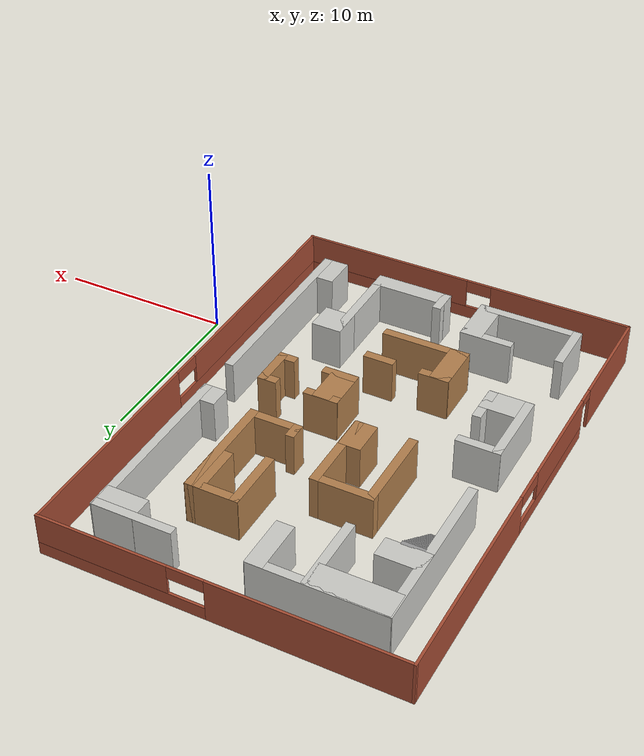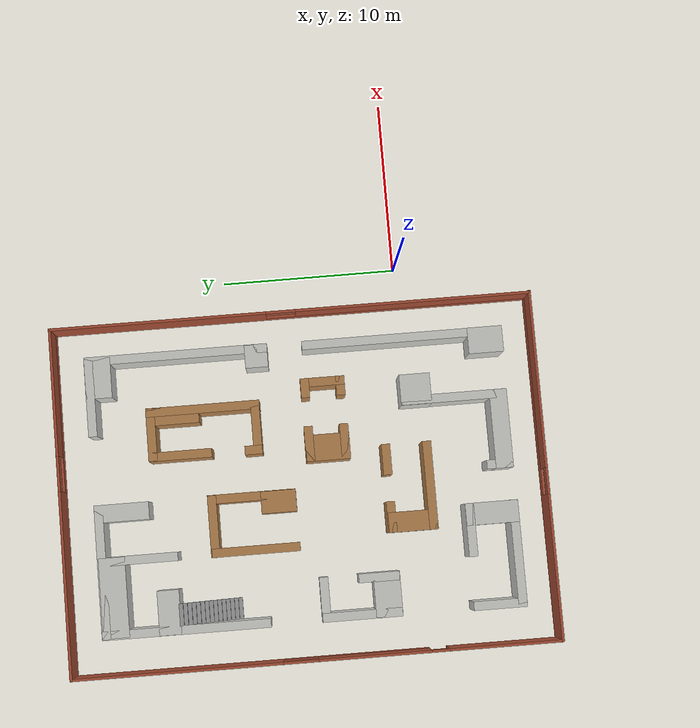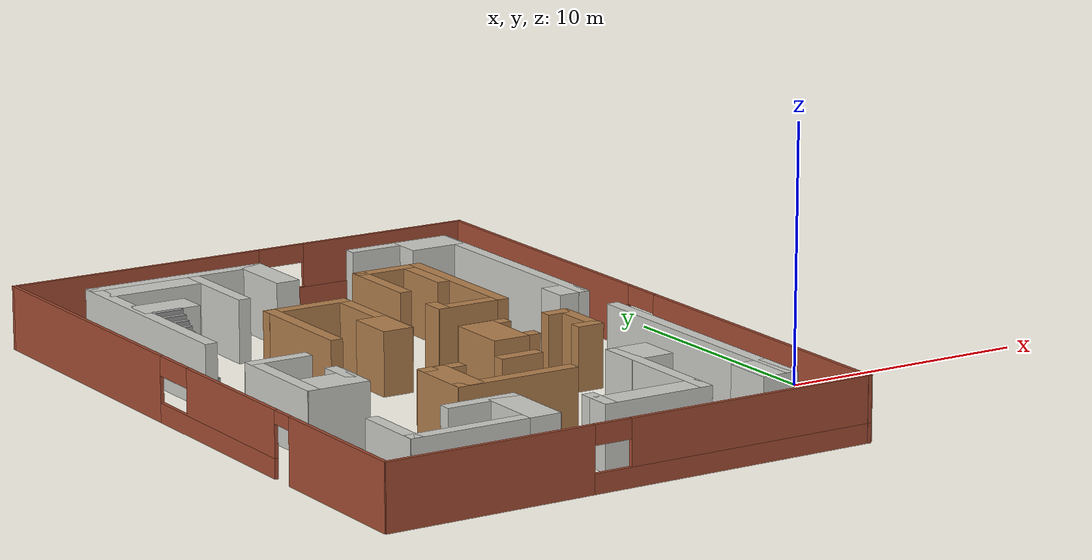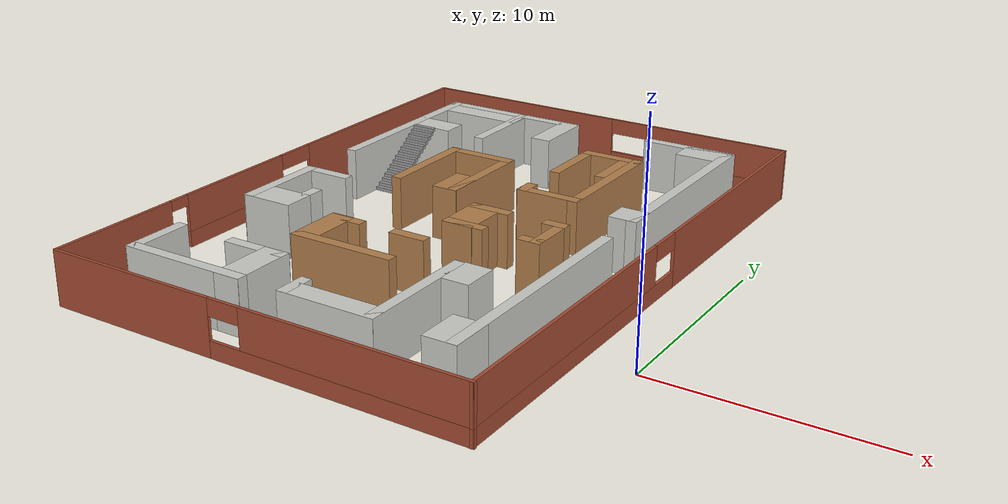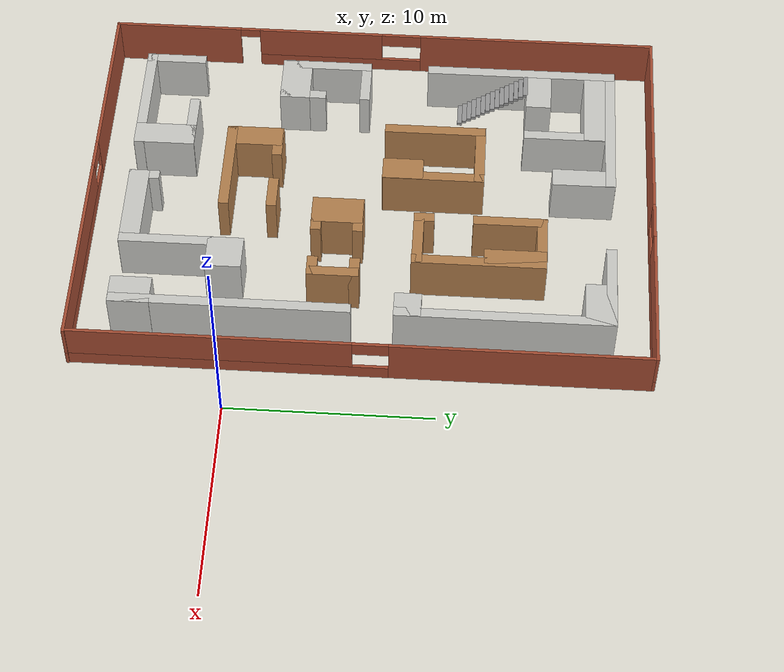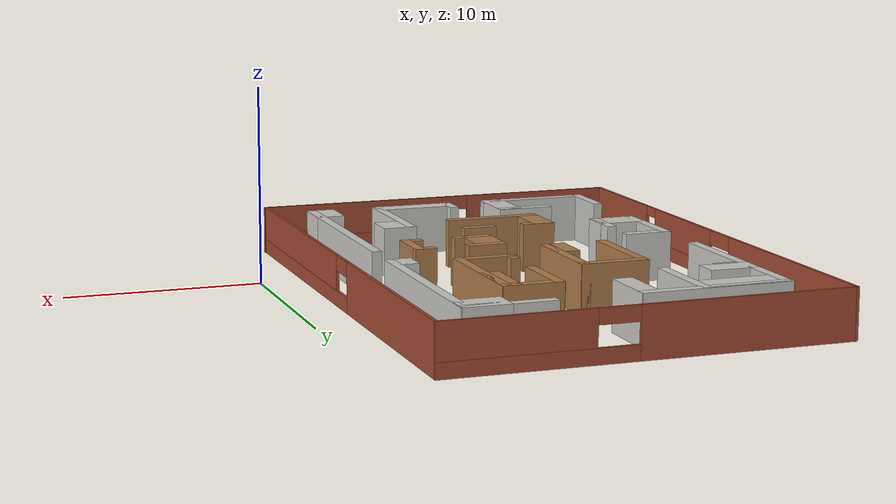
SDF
<?xml version='1.0'?>
<sdf version='1.7'>
  <model name='maze_world2'>
    <pose>-11.0864 6.28439 0 0 -0 0</pose>
    <link name='Stairs_3'>
      <visual name='Stairs_3_Visual_0'>
        <pose>-7.8722 4.14343 0.083333 0 0 -3.14159</pose>
        <geometry>
          <box>
            <size>1.25 0.233333 0.166667</size>
          </box>
        </geometry>
        <material>
          <script>
            <uri>file://media/materials/scripts/gazebo.material</uri>
            <name>Gazebo/Grey</name>
          </script>
          <ambient>1 1 1 1</ambient>
        </material>
        <meta>
          <layer>0</layer>
        </meta>
      </visual>
      <collision name='Stairs_3_Collision_0'>
        <geometry>
          <box>
            <size>1.25 0.233333 0.166667</size>
          </box>
        </geometry>
        <pose>-7.8722 4.14343 0.083333 0 0 -3.14159</pose>
      </collision>
      <visual name='Stairs_3_Visual_1'>
        <pose>-7.8722 4.37676 0.25 0 0 -3.14159</pose>
        <geometry>
          <box>
            <size>1.25 0.233333 0.166667</size>
          </box>
        </geometry>
        <material>
          <script>
            <uri>file://media/materials/scripts/gazebo.material</uri>
            <name>Gazebo/Grey</name>
          </script>
          <ambient>1 1 1 1</ambient>
        </material>
        <meta>
          <layer>0</layer>
        </meta>
      </visual>
      <collision name='Stairs_3_Collision_1'>
        <geometry>
          <box>
            <size>1.25 0.233333 0.166667</size>
          </box>
        </geometry>
        <pose>-7.8722 4.37676 0.25 0 0 -3.14159</pose>
      </collision>
      <visual name='Stairs_3_Visual_2'>
        <pose>-7.8722 4.6101 0.416667 0 0 -3.14159</pose>
        <geometry>
          <box>
            <size>1.25 0.233333 0.166667</size>
          </box>
        </geometry>
        <material>
          <script>
            <uri>file://media/materials/scripts/gazebo.material</uri>
            <name>Gazebo/Grey</name>
          </script>
          <ambient>1 1 1 1</ambient>
        </material>
        <meta>
          <layer>0</layer>
        </meta>
      </visual>
      <collision name='Stairs_3_Collision_2'>
        <geometry>
          <box>
            <size>1.25 0.233333 0.166667</size>
          </box>
        </geometry>
        <pose>-7.8722 4.6101 0.416667 0 0 -3.14159</pose>
      </collision>
      <visual name='Stairs_3_Visual_3'>
        <pose>-7.8722 4.84343 0.583333 0 0 -3.14159</pose>
        <geometry>
          <box>
            <size>1.25 0.233333 0.166667</size>
          </box>
        </geometry>
        <material>
          <script>
            <uri>file://media/materials/scripts/gazebo.material</uri>
            <name>Gazebo/Grey</name>
          </script>
          <ambient>1 1 1 1</ambient>
        </material>
        <meta>
          <layer>0</layer>
        </meta>
      </visual>
      <collision name='Stairs_3_Collision_3'>
        <geometry>
          <box>
            <size>1.25 0.233333 0.166667</size>
          </box>
        </geometry>
        <pose>-7.8722 4.84343 0.583333 0 0 -3.14159</pose>
      </collision>
      <visual name='Stairs_3_Visual_4'>
        <pose>-7.8722 5.07676 0.75 0 0 -3.14159</pose>
        <geometry>
          <box>
            <size>1.25 0.233333 0.166667</size>
          </box>
        </geometry>
        <material>
          <script>
            <uri>file://media/materials/scripts/gazebo.material</uri>
            <name>Gazebo/Grey</name>
          </script>
          <ambient>1 1 1 1</ambient>
        </material>
        <meta>
          <layer>0</layer>
        </meta>
      </visual>
      <collision name='Stairs_3_Collision_4'>
        <geometry>
          <box>
            <size>1.25 0.233333 0.166667</size>
          </box>
        </geometry>
        <pose>-7.8722 5.07676 0.75 0 0 -3.14159</pose>
      </collision>
      <visual name='Stairs_3_Visual_5'>
        <pose>-7.8722 5.3101 0.916667 0 0 -3.14159</pose>
        <geometry>
          <box>
            <size>1.25 0.233333 0.166667</size>
          </box>
        </geometry>
        <material>
          <script>
            <uri>file://media/materials/scripts/gazebo.material</uri>
            <name>Gazebo/Grey</name>
          </script>
          <ambient>1 1 1 1</ambient>
        </material>
        <meta>
          <layer>0</layer>
        </meta>
      </visual>
      <collision name='Stairs_3_Collision_5'>
        <geometry>
          <box>
            <size>1.25 0.233333 0.166667</size>
          </box>
        </geometry>
        <pose>-7.8722 5.3101 0.916667 0 0 -3.14159</pose>
      </collision>
      <visual name='Stairs_3_Visual_6'>
        <pose>-7.8722 5.54343 1.08333 0 0 -3.14159</pose>
        <geometry>
          <box>
            <size>1.25 0.233333 0.166667</size>
          </box>
        </geometry>
        <material>
          <script>
            <uri>file://media/materials/scripts/gazebo.material</uri>
            <name>Gazebo/Grey</name>
          </script>
          <ambient>1 1 1 1</ambient>
        </material>
        <meta>
          <layer>0</layer>
        </meta>
      </visual>
      <collision name='Stairs_3_Collision_6'>
        <geometry>
          <box>
            <size>1.25 0.233333 0.166667</size>
          </box>
        </geometry>
        <pose>-7.8722 5.54343 1.08333 0 0 -3.14159</pose>
      </collision>
      <visual name='Stairs_3_Visual_7'>
        <pose>-7.8722 5.77677 1.25 0 0 -3.14159</pose>
        <geometry>
          <box>
            <size>1.25 0.233333 0.166667</size>
          </box>
        </geometry>
        <material>
          <script>
            <uri>file://media/materials/scripts/gazebo.material</uri>
            <name>Gazebo/Grey</name>
          </script>
          <ambient>1 1 1 1</ambient>
        </material>
        <meta>
          <layer>0</layer>
        </meta>
      </visual>
      <collision name='Stairs_3_Collision_7'>
        <geometry>
          <box>
            <size>1.25 0.233333 0.166667</size>
          </box>
        </geometry>
        <pose>-7.8722 5.77677 1.25 0 0 -3.14159</pose>
      </collision>
      <visual name='Stairs_3_Visual_8'>
        <pose>-7.8722 6.0101 1.41667 0 0 -3.14159</pose>
        <geometry>
          <box>
            <size>1.25 0.233333 0.166667</size>
          </box>
        </geometry>
        <material>
          <script>
            <uri>file://media/materials/scripts/gazebo.material</uri>
            <name>Gazebo/Grey</name>
          </script>
          <ambient>1 1 1 1</ambient>
        </material>
        <meta>
          <layer>0</layer>
        </meta>
      </visual>
      <collision name='Stairs_3_Collision_8'>
        <geometry>
          <box>
            <size>1.25 0.233333 0.166667</size>
          </box>
        </geometry>
        <pose>-7.8722 6.0101 1.41667 0 0 -3.14159</pose>
      </collision>
      <visual name='Stairs_3_Visual_9'>
        <pose>-7.8722 6.24343 1.58333 0 0 -3.14159</pose>
        <geometry>
          <box>
            <size>1.25 0.233333 0.166667</size>
          </box>
        </geometry>
        <material>
          <script>
            <uri>file://media/materials/scripts/gazebo.material</uri>
            <name>Gazebo/Grey</name>
          </script>
          <ambient>1 1 1 1</ambient>
        </material>
        <meta>
          <layer>0</layer>
        </meta>
      </visual>
      <collision name='Stairs_3_Collision_9'>
        <geometry>
          <box>
            <size>1.25 0.233333 0.166667</size>
          </box>
        </geometry>
        <pose>-7.8722 6.24343 1.58333 0 0 -3.14159</pose>
      </collision>
      <visual name='Stairs_3_Visual_10'>
        <pose>-7.8722 6.47677 1.75 0 0 -3.14159</pose>
        <geometry>
          <box>
            <size>1.25 0.233333 0.166667</size>
          </box>
        </geometry>
        <material>
          <script>
            <uri>file://media/materials/scripts/gazebo.material</uri>
            <name>Gazebo/Grey</name>
          </script>
          <ambient>1 1 1 1</ambient>
        </material>
        <meta>
          <layer>0</layer>
        </meta>
      </visual>
      <collision name='Stairs_3_Collision_10'>
        <geometry>
          <box>
            <size>1.25 0.233333 0.166667</size>
          </box>
        </geometry>
        <pose>-7.8722 6.47677 1.75 0 0 -3.14159</pose>
      </collision>
      <visual name='Stairs_3_Visual_11'>
        <pose>-7.8722 6.7101 1.91667 0 0 -3.14159</pose>
        <geometry>
          <box>
            <size>1.25 0.233333 0.166667</size>
          </box>
        </geometry>
        <material>
          <script>
            <uri>file://media/materials/scripts/gazebo.material</uri>
            <name>Gazebo/Grey</name>
          </script>
          <ambient>1 1 1 1</ambient>
        </material>
        <meta>
          <layer>0</layer>
        </meta>
      </visual>
      <collision name='Stairs_3_Collision_11'>
        <geometry>
          <box>
            <size>1.25 0.233333 0.166667</size>
          </box>
        </geometry>
        <pose>-7.8722 6.7101 1.91667 0 0 -3.14159</pose>
      </collision>
      <visual name='Stairs_3_Visual_12'>
        <pose>-7.8722 6.94343 2.08333 0 0 -3.14159</pose>
        <geometry>
          <box>
            <size>1.25 0.233333 0.166667</size>
          </box>
        </geometry>
        <material>
          <script>
            <uri>file://media/materials/scripts/gazebo.material</uri>
            <name>Gazebo/Grey</name>
          </script>
          <ambient>1 1 1 1</ambient>
        </material>
        <meta>
          <layer>0</layer>
        </meta>
      </visual>
      <collision name='Stairs_3_Collision_12'>
        <geometry>
          <box>
            <size>1.25 0.233333 0.166667</size>
          </box>
        </geometry>
        <pose>-7.8722 6.94343 2.08333 0 0 -3.14159</pose>
      </collision>
      <visual name='Stairs_3_Visual_13'>
        <pose>-7.8722 7.17676 2.25 0 0 -3.14159</pose>
        <geometry>
          <box>
            <size>1.25 0.233333 0.166667</size>
          </box>
        </geometry>
        <material>
          <script>
            <uri>file://media/materials/scripts/gazebo.material</uri>
            <name>Gazebo/Grey</name>
          </script>
          <ambient>1 1 1 1</ambient>
        </material>
        <meta>
          <layer>0</layer>
        </meta>
      </visual>
      <collision name='Stairs_3_Collision_13'>
        <geometry>
          <box>
            <size>1.25 0.233333 0.166667</size>
          </box>
        </geometry>
        <pose>-7.8722 7.17676 2.25 0 0 -3.14159</pose>
      </collision>
      <visual name='Stairs_3_Visual_14'>
        <pose>-7.8722 7.4101 2.41667 0 0 -3.14159</pose>
        <geometry>
          <box>
            <size>1.25 0.233333 0.166667</size>
          </box>
        </geometry>
        <material>
          <script>
            <uri>file://media/materials/scripts/gazebo.material</uri>
            <name>Gazebo/Grey</name>
          </script>
          <ambient>1 1 1 1</ambient>
        </material>
        <meta>
          <layer>0</layer>
        </meta>
      </visual>
      <collision name='Stairs_3_Collision_14'>
        <geometry>
          <box>
            <size>1.25 0.233333 0.166667</size>
          </box>
        </geometry>
        <pose>-7.8722 7.4101 2.41667 0 0 -3.14159</pose>
      </collision>
    </link>
    <link name='Wall_0'>
      <collision name='Wall_0_Collision'>
        <geometry>
          <box>
            <size>9.5 0.5 2.5</size>
          </box>
        </geometry>
        <pose>0 0 1.25 0 -0 0</pose>
      </collision>
      <visual name='Wall_0_Visual'>
        <pose>0 0 1.25 0 -0 0</pose>
        <geometry>
          <box>
            <size>9.5 0.5 2.5</size>
          </box>
        </geometry>
        <material>
          <script>
            <uri>file://media/materials/scripts/gazebo.material</uri>
            <name>Gazebo/CeilingTiled</name>
          </script>
          <ambient>1 1 1 1</ambient>
        </material>
        <meta>
          <layer>0</layer>
        </meta>
      </visual>
      <pose>-8.71362 7.17661 0 0 -0 -1.5708</pose>
    </link>
    <link name='Wall_10'>
      <pose>-1.05462 -13.8124 0 0 -0 0</pose>
      <visual name='Wall_10_Visual_0'>
        <pose>-5.86388 0 1.25 0 -0 0</pose>
        <geometry>
          <box>
            <size>8.27224 0.15 2.5</size>
          </box>
        </geometry>
        <material>
          <script>
            <uri>file://media/materials/scripts/gazebo.material</uri>
            <name>Gazebo/Bricks</name>
          </script>
          <ambient>1 1 1 1</ambient>
        </material>
        <meta>
          <layer>0</layer>
        </meta>
      </visual>
      <collision name='Wall_10_Collision_0'>
        <geometry>
          <box>
            <size>8.27224 0.15 2.5</size>
          </box>
        </geometry>
        <pose>-5.86388 0 1.25 0 -0 0</pose>
      </collision>
      <visual name='Wall_10_Visual_1'>
        <pose>4.13612 0 0.375 0 -0 0</pose>
        <geometry>
          <box>
            <size>11.7278 0.15 0.75</size>
          </box>
        </geometry>
        <material>
          <script>
            <uri>file://media/materials/scripts/gazebo.material</uri>
            <name>Gazebo/Bricks</name>
          </script>
          <ambient>1 1 1 1</ambient>
        </material>
        <meta>
          <layer>0</layer>
        </meta>
      </visual>
      <collision name='Wall_10_Collision_1'>
        <geometry>
          <box>
            <size>11.7278 0.15 0.75</size>
          </box>
        </geometry>
        <pose>4.13612 0 0.375 0 -0 0</pose>
      </collision>
      <visual name='Wall_10_Visual_2'>
        <pose>4.88612 0 1.625 0 -0 0</pose>
        <geometry>
          <box>
            <size>10.2278 0.15 1.75</size>
          </box>
        </geometry>
        <material>
          <script>
            <uri>file://media/materials/scripts/gazebo.material</uri>
            <name>Gazebo/Bricks</name>
          </script>
          <ambient>1 1 1 1</ambient>
        </material>
        <meta>
          <layer>0</layer>
        </meta>
      </visual>
      <collision name='Wall_10_Collision_2'>
        <geometry>
          <box>
            <size>10.2278 0.15 1.75</size>
          </box>
        </geometry>
        <pose>4.88612 0 1.625 0 -0 0</pose>
      </collision>
      <visual name='Wall_10_Visual_3'>
        <pose>-0.977764 0 2.125 0 -0 0</pose>
        <geometry>
          <box>
            <size>1.5 0.15 0.75</size>
          </box>
        </geometry>
        <material>
          <script>
            <uri>file://media/materials/scripts/gazebo.material</uri>
            <name>Gazebo/Bricks</name>
          </script>
          <ambient>1 1 1 1</ambient>
        </material>
        <meta>
          <layer>0</layer>
        </meta>
      </visual>
      <collision name='Wall_10_Collision_3'>
        <geometry>
          <box>
            <size>1.5 0.15 0.75</size>
          </box>
        </geometry>
        <pose>-0.977764 0 2.125 0 -0 0</pose>
      </collision>
    </link>
    <link name='Wall_101'>
      <pose>-1.08638 13.8236 0 0 -0 0</pose>
      <visual name='Wall_101_Visual_0'>
        <pose>-4.67553 0 1.25 0 -0 0</pose>
        <geometry>
          <box>
            <size>10.6489 0.15 2.5</size>
          </box>
        </geometry>
        <material>
          <script>
            <uri>file://media/materials/scripts/gazebo.material</uri>
            <name>Gazebo/Bricks</name>
          </script>
          <ambient>1 1 1 1</ambient>
        </material>
        <meta>
          <layer>0</layer>
        </meta>
      </visual>
      <collision name='Wall_101_Collision_0'>
        <geometry>
          <box>
            <size>10.6489 0.15 2.5</size>
          </box>
        </geometry>
        <pose>-4.67553 0 1.25 0 -0 0</pose>
      </collision>
      <visual name='Wall_101_Visual_1'>
        <pose>5.32447 0 0.375 0 -0 0</pose>
        <geometry>
          <box>
            <size>9.35107 0.15 0.75</size>
          </box>
        </geometry>
        <material>
          <script>
            <uri>file://media/materials/scripts/gazebo.material</uri>
            <name>Gazebo/Bricks</name>
          </script>
          <ambient>1 1 1 1</ambient>
        </material>
        <meta>
          <layer>0</layer>
        </meta>
      </visual>
      <collision name='Wall_101_Collision_1'>
        <geometry>
          <box>
            <size>9.35107 0.15 0.75</size>
          </box>
        </geometry>
        <pose>5.32447 0 0.375 0 -0 0</pose>
      </collision>
      <visual name='Wall_101_Visual_2'>
        <pose>6.32447 0 1.625 0 -0 0</pose>
        <geometry>
          <box>
            <size>7.35107 0.15 1.75</size>
          </box>
        </geometry>
        <material>
          <script>
            <uri>file://media/materials/scripts/gazebo.material</uri>
            <name>Gazebo/Bricks</name>
          </script>
          <ambient>1 1 1 1</ambient>
        </material>
        <meta>
          <layer>0</layer>
        </meta>
      </visual>
      <collision name='Wall_101_Collision_2'>
        <geometry>
          <box>
            <size>7.35107 0.15 1.75</size>
          </box>
        </geometry>
        <pose>6.32447 0 1.625 0 -0 0</pose>
      </collision>
      <visual name='Wall_101_Visual_3'>
        <pose>1.64893 0 2.125 0 -0 0</pose>
        <geometry>
          <box>
            <size>2 0.15 0.75</size>
          </box>
        </geometry>
        <material>
          <script>
            <uri>file://media/materials/scripts/gazebo.material</uri>
            <name>Gazebo/Bricks</name>
          </script>
          <ambient>1 1 1 1</ambient>
        </material>
        <meta>
          <layer>0</layer>
        </meta>
      </visual>
      <collision name='Wall_101_Collision_3'>
        <geometry>
          <box>
            <size>2 0.15 0.75</size>
          </box>
        </geometry>
        <pose>1.64893 0 2.125 0 -0 0</pose>
      </collision>
    </link>
    <link name='Wall_12'>
      <collision name='Wall_12_Collision'>
        <geometry>
          <box>
            <size>3.1 1 2.5</size>
          </box>
        </geometry>
        <pose>0 0 1.25 0 -0 0</pose>
      </collision>
      <visual name='Wall_12_Visual'>
        <pose>0 0 1.25 0 -0 0</pose>
        <geometry>
          <box>
            <size>3.1 1 2.5</size>
          </box>
        </geometry>
        <material>
          <script>
            <uri>file://media/materials/scripts/gazebo.material</uri>
            <name>Gazebo/CeilingTiled</name>
          </script>
          <ambient>1 1 1 1</ambient>
        </material>
        <meta>
          <layer>0</layer>
        </meta>
      </visual>
      <pose>-1.89462 10.3866 0 0 -0 -1.5708</pose>
    </link>
    <link name='Wall_14'>
      <collision name='Wall_14_Collision'>
        <geometry>
          <box>
            <size>5 0.5 2.5</size>
          </box>
        </geometry>
        <pose>0 0 1.25 0 -0 0</pose>
      </collision>
      <visual name='Wall_14_Visual'>
        <pose>0 0 1.25 0 -0 0</pose>
        <geometry>
          <box>
            <size>5 0.5 2.5</size>
          </box>
        </geometry>
        <material>
          <script>
            <uri>file://media/materials/scripts/gazebo.material</uri>
            <name>Gazebo/Wood</name>
          </script>
          <ambient>1 1 1 1</ambient>
        </material>
        <meta>
          <layer>0</layer>
        </meta>
      </visual>
      <pose>-4.60008 2.95802 0 0 -0 -1.5708</pose>
    </link>
    <link name='Wall_18'>
      <collision name='Wall_18_Collision'>
        <geometry>
          <box>
            <size>3.5 0.5 2.5</size>
          </box>
        </geometry>
        <pose>0 0 1.25 0 -0 0</pose>
      </collision>
      <visual name='Wall_18_Visual'>
        <pose>0 0 1.25 0 -0 0</pose>
        <geometry>
          <box>
            <size>3.5 0.5 2.5</size>
          </box>
        </geometry>
        <material>
          <script>
            <uri>file://media/materials/scripts/gazebo.material</uri>
            <name>Gazebo/Wood</name>
          </script>
          <ambient>1 1 1 1</ambient>
        </material>
        <meta>
          <layer>0</layer>
        </meta>
      </visual>
      <pose>-3.10486 5.25295 0 0 -0 0</pose>
    </link>
    <link name='Wall_2'>
      <collision name='Wall_2_Collision'>
        <geometry>
          <box>
            <size>7.5 0.5 2.5</size>
          </box>
        </geometry>
        <pose>0 0 1.25 0 -0 0</pose>
      </collision>
      <visual name='Wall_2_Visual'>
        <pose>0 0 1.25 0 -0 0</pose>
        <geometry>
          <box>
            <size>7.5 0.5 2.5</size>
          </box>
        </geometry>
        <material>
          <script>
            <uri>file://media/materials/scripts/gazebo.material</uri>
            <name>Gazebo/CeilingTiled</name>
          </script>
          <ambient>1 1 1 1</ambient>
        </material>
        <meta>
          <layer>0</layer>
        </meta>
      </visual>
      <pose>-5.17262 11.6956 0 0 -0 0</pose>
    </link>
    <link name='Wall_20'>
      <collision name='Wall_20_Collision'>
        <geometry>
          <box>
            <size>5 0.5 2.5</size>
          </box>
        </geometry>
        <pose>0 0 1.25 0 -0 0</pose>
      </collision>
      <visual name='Wall_20_Visual'>
        <pose>0 0 1.25 0 -0 0</pose>
        <geometry>
          <box>
            <size>5 0.5 2.5</size>
          </box>
        </geometry>
        <material>
          <script>
            <uri>file://media/materials/scripts/gazebo.material</uri>
            <name>Gazebo/Wood</name>
          </script>
          <ambient>1 1 1 1</ambient>
        </material>
        <meta>
          <layer>0</layer>
        </meta>
      </visual>
      <pose>-1.58081 3.00295 0 0 -0 -1.5708</pose>
    </link>
    <link name='Wall_22'>
      <collision name='Wall_22_Collision'>
        <geometry>
          <box>
            <size>2 1.25 2.5</size>
          </box>
        </geometry>
        <pose>0 0 1.25 0 -0 0</pose>
      </collision>
      <visual name='Wall_22_Visual'>
        <pose>0 0 1.25 0 -0 0</pose>
        <geometry>
          <box>
            <size>2 1.25 2.5</size>
          </box>
        </geometry>
        <material>
          <script>
            <uri>file://media/materials/scripts/gazebo.material</uri>
            <name>Gazebo/Wood</name>
          </script>
          <ambient>1 1 1 1</ambient>
        </material>
        <meta>
          <layer>0</layer>
        </meta>
      </visual>
      <pose>-1.9808 1.48026 0 0 -0 -1.5708</pose>
    </link>
    <link name='Wall_24'>
      <collision name='Wall_24_Collision'>
        <geometry>
          <box>
            <size>3.6 0.5 2.5</size>
          </box>
        </geometry>
        <pose>0 0 1.25 0 -0 0</pose>
      </collision>
      <visual name='Wall_24_Visual'>
        <pose>0 0 1.25 0 -0 0</pose>
        <geometry>
          <box>
            <size>3.6 0.5 2.5</size>
          </box>
        </geometry>
        <material>
          <script>
            <uri>file://media/materials/scripts/gazebo.material</uri>
            <name>Gazebo/Wood</name>
          </script>
          <ambient>1 1 1 1</ambient>
        </material>
        <meta>
          <layer>0</layer>
        </meta>
      </visual>
      <pose>1.07888 6.85147 0 0 -0 -1.5708</pose>
    </link>
    <link name='Wall_26'>
      <collision name='Wall_26_Collision'>
        <geometry>
          <box>
            <size>3 0.5 2.5</size>
          </box>
        </geometry>
        <pose>0 0 1.25 0 -0 0</pose>
      </collision>
      <visual name='Wall_26_Visual'>
        <pose>0 0 1.25 0 -0 0</pose>
        <geometry>
          <box>
            <size>3 0.5 2.5</size>
          </box>
        </geometry>
        <material>
          <script>
            <uri>file://media/materials/scripts/gazebo.material</uri>
            <name>Gazebo/Wood</name>
          </script>
          <ambient>1 1 1 1</ambient>
        </material>
        <meta>
          <layer>0</layer>
        </meta>
      </visual>
      <pose>2.35433 8.40637 0 0 -0 0</pose>
    </link>
    <link name='Wall_28'>
      <collision name='Wall_28_Collision'>
        <geometry>
          <box>
            <size>6.5 0.5 2.5</size>
          </box>
        </geometry>
        <pose>0 0 1.25 0 -0 0</pose>
      </collision>
      <visual name='Wall_28_Visual'>
        <pose>0 0 1.25 0 -0 0</pose>
        <geometry>
          <box>
            <size>6.5 0.5 2.5</size>
          </box>
        </geometry>
        <material>
          <script>
            <uri>file://media/materials/scripts/gazebo.material</uri>
            <name>Gazebo/Wood</name>
          </script>
          <ambient>1 1 1 1</ambient>
        </material>
        <meta>
          <layer>0</layer>
        </meta>
      </visual>
      <pose>3.61895 5.40637 0 0 -0 -1.5708</pose>
    </link>
    <link name='Wall_30'>
      <collision name='Wall_30_Collision'>
        <geometry>
          <box>
            <size>3 1 2.5</size>
          </box>
        </geometry>
        <pose>0 0 1.25 0 -0 0</pose>
      </collision>
      <visual name='Wall_30_Visual'>
        <pose>0 0 1.25 0 -0 0</pose>
        <geometry>
          <box>
            <size>3 1 2.5</size>
          </box>
        </geometry>
        <material>
          <script>
            <uri>file://media/materials/scripts/gazebo.material</uri>
            <name>Gazebo/Wood</name>
          </script>
          <ambient>1 1 1 1</ambient>
        </material>
        <meta>
          <layer>0</layer>
        </meta>
      </visual>
      <pose>3.35144 7.13886 0 0 -0 -1.5708</pose>
    </link>
    <link name='Wall_32'>
      <collision name='Wall_32_Collision'>
        <geometry>
          <box>
            <size>3 0.5 2.5</size>
          </box>
        </geometry>
        <pose>0 0 1.25 0 -0 0</pose>
      </collision>
      <visual name='Wall_32_Visual'>
        <pose>0 0 1.25 0 -0 0</pose>
        <geometry>
          <box>
            <size>3 0.5 2.5</size>
          </box>
        </geometry>
        <material>
          <script>
            <uri>file://media/materials/scripts/gazebo.material</uri>
            <name>Gazebo/Wood</name>
          </script>
          <ambient>1 1 1 1</ambient>
        </material>
        <meta>
          <layer>0</layer>
        </meta>
      </visual>
      <pose>2.30742 2.42212 0 0 -0 3.14159</pose>
    </link>
    <link name='Wall_34'>
      <collision name='Wall_34_Collision'>
        <geometry>
          <box>
            <size>1 0.5 2.5</size>
          </box>
        </geometry>
        <pose>0 0 1.25 0 -0 0</pose>
      </collision>
      <visual name='Wall_34_Visual'>
        <pose>0 0 1.25 0 -0 0</pose>
        <geometry>
          <box>
            <size>1 0.5 2.5</size>
          </box>
        </geometry>
        <material>
          <script>
            <uri>file://media/materials/scripts/gazebo.material</uri>
            <name>Gazebo/Wood</name>
          </script>
          <ambient>1 1 1 1</ambient>
        </material>
        <meta>
          <layer>0</layer>
        </meta>
      </visual>
      <pose>1.04238 2.67261 0 0 -0 1.5708</pose>
    </link>
    <link name='Wall_36'>
      <collision name='Wall_36_Collision'>
        <geometry>
          <box>
            <size>10.5 0.5 2.5</size>
          </box>
        </geometry>
        <pose>0 0 1.25 0 -0 0</pose>
      </collision>
      <visual name='Wall_36_Visual'>
        <pose>0 0 1.25 0 -0 0</pose>
        <geometry>
          <box>
            <size>10.5 0.5 2.5</size>
          </box>
        </geometry>
        <material>
          <script>
            <uri>file://media/materials/scripts/gazebo.material</uri>
            <name>Gazebo/CeilingTiled</name>
          </script>
          <ambient>1 1 1 1</ambient>
        </material>
        <meta>
          <layer>0</layer>
        </meta>
      </visual>
      <pose>6.81891 6.72747 0 0 -0 -1.5708</pose>
    </link>
    <link name='Wall_38'>
      <collision name='Wall_38_Collision'>
        <geometry>
          <box>
            <size>4.5 0.5 2.5</size>
          </box>
        </geometry>
        <pose>0 0 1.25 0 -0 0</pose>
      </collision>
      <visual name='Wall_38_Visual'>
        <pose>0 0 1.25 0 -0 0</pose>
        <geometry>
          <box>
            <size>4.5 0.5 2.5</size>
          </box>
        </geometry>
        <material>
          <script>
            <uri>file://media/materials/scripts/gazebo.material</uri>
            <name>Gazebo/CeilingTiled</name>
          </script>
          <ambient>1 1 1 1</ambient>
        </material>
        <meta>
          <layer>0</layer>
        </meta>
      </visual>
      <pose>4.75738 11.7275 0 0 -0 3.14159</pose>
    </link>
    <link name='Wall_4'>
      <collision name='Wall_4_Collision'>
        <geometry>
          <box>
            <size>4.5 1.5 2.5</size>
          </box>
        </geometry>
        <pose>0 0 1.25 0 -0 0</pose>
      </collision>
      <visual name='Wall_4_Visual'>
        <pose>0 0 1.25 0 -0 0</pose>
        <geometry>
          <box>
            <size>4.5 1.5 2.5</size>
          </box>
        </geometry>
        <material>
          <script>
            <uri>file://media/materials/scripts/gazebo.material</uri>
            <name>Gazebo/CeilingTiled</name>
          </script>
          <ambient>1 1 1 1</ambient>
        </material>
        <meta>
          <layer>0</layer>
        </meta>
      </visual>
      <pose>-6.63762 11.1336 0 0 -0 0</pose>
    </link>
    <link name='Wall_40'>
      <collision name='Wall_40_Collision'>
        <geometry>
          <box>
            <size>2.35 1.5 2.5</size>
          </box>
        </geometry>
        <pose>0 0 1.25 0 -0 0</pose>
      </collision>
      <visual name='Wall_40_Visual'>
        <pose>0 0 1.25 0 -0 0</pose>
        <geometry>
          <box>
            <size>2.35 1.5 2.5</size>
          </box>
        </geometry>
        <material>
          <script>
            <uri>file://media/materials/scripts/gazebo.material</uri>
            <name>Gazebo/CeilingTiled</name>
          </script>
          <ambient>1 1 1 1</ambient>
        </material>
        <meta>
          <layer>0</layer>
        </meta>
      </visual>
      <pose>5.84016 11.2353 0 0 -0 3.14159</pose>
    </link>
    <link name='Wall_42'>
      <collision name='Wall_42_Collision'>
        <geometry>
          <box>
            <size>1.31 1.3 2.5</size>
          </box>
        </geometry>
        <pose>0 0 1.25 0 -0 0</pose>
      </collision>
      <visual name='Wall_42_Visual'>
        <pose>0 0 1.25 0 -0 0</pose>
        <geometry>
          <box>
            <size>1.31 1.3 2.5</size>
          </box>
        </geometry>
        <material>
          <script>
            <uri>file://media/materials/scripts/gazebo.material</uri>
            <name>Gazebo/CeilingTiled</name>
          </script>
          <ambient>1 1 1 1</ambient>
        </material>
        <meta>
          <layer>0</layer>
        </meta>
      </visual>
      <pose>6.38282 2.12896 0 0 -0 3.14159</pose>
    </link>
    <link name='Wall_45'>
      <pose>8.82723 -0.023613 0 0 -0 -1.5708</pose>
      <visual name='Wall_45_Visual_0'>
        <pose>-7.64035 0 1.25 0 -0 0</pose>
        <geometry>
          <box>
            <size>12.4693 0.15 2.5</size>
          </box>
        </geometry>
        <material>
          <script>
            <uri>file://media/materials/scripts/gazebo.material</uri>
            <name>Gazebo/Bricks</name>
          </script>
          <ambient>1 1 1 1</ambient>
        </material>
        <meta>
          <layer>0</layer>
        </meta>
      </visual>
      <collision name='Wall_45_Collision_0'>
        <geometry>
          <box>
            <size>12.4693 0.15 2.5</size>
          </box>
        </geometry>
        <pose>-7.64035 0 1.25 0 -0 0</pose>
      </collision>
      <visual name='Wall_45_Visual_1'>
        <pose>6.23465 0 0.375 0 -0 0</pose>
        <geometry>
          <box>
            <size>15.2807 0.15 0.75</size>
          </box>
        </geometry>
        <material>
          <script>
            <uri>file://media/materials/scripts/gazebo.material</uri>
            <name>Gazebo/Bricks</name>
          </script>
          <ambient>1 1 1 1</ambient>
        </material>
        <meta>
          <layer>0</layer>
        </meta>
      </visual>
      <collision name='Wall_45_Collision_1'>
        <geometry>
          <box>
            <size>15.2807 0.15 0.75</size>
          </box>
        </geometry>
        <pose>6.23465 0 0.375 0 -0 0</pose>
      </collision>
      <visual name='Wall_45_Visual_2'>
        <pose>7.08465 0 1.625 0 -0 0</pose>
        <geometry>
          <box>
            <size>13.5807 0.15 1.75</size>
          </box>
        </geometry>
        <material>
          <script>
            <uri>file://media/materials/scripts/gazebo.material</uri>
            <name>Gazebo/Bricks</name>
          </script>
          <ambient>1 1 1 1</ambient>
        </material>
        <meta>
          <layer>0</layer>
        </meta>
      </visual>
      <collision name='Wall_45_Collision_2'>
        <geometry>
          <box>
            <size>13.5807 0.15 1.75</size>
          </box>
        </geometry>
        <pose>7.08465 0 1.625 0 -0 0</pose>
      </collision>
      <visual name='Wall_45_Visual_3'>
        <pose>-0.555708 0 2.125 0 -0 0</pose>
        <geometry>
          <box>
            <size>1.7 0.15 0.75</size>
          </box>
        </geometry>
        <material>
          <script>
            <uri>file://media/materials/scripts/gazebo.material</uri>
            <name>Gazebo/Bricks</name>
          </script>
          <ambient>1 1 1 1</ambient>
        </material>
        <meta>
          <layer>0</layer>
        </meta>
      </visual>
      <collision name='Wall_45_Collision_3'>
        <geometry>
          <box>
            <size>1.7 0.15 0.75</size>
          </box>
        </geometry>
        <pose>-0.555708 0 2.125 0 -0 0</pose>
      </collision>
    </link>
    <link name='Wall_47'>
      <collision name='Wall_47_Collision'>
        <geometry>
          <box>
            <size>3 0.5 2.5</size>
          </box>
        </geometry>
        <pose>0 0 1.25 0 -0 0</pose>
      </collision>
      <visual name='Wall_47_Visual'>
        <pose>0 0 1.25 0 -0 0</pose>
        <geometry>
          <box>
            <size>3 0.5 2.5</size>
          </box>
        </geometry>
        <material>
          <script>
            <uri>file://media/materials/scripts/gazebo.material</uri>
            <name>Gazebo/CeilingTiled</name>
          </script>
          <ambient>1 1 1 1</ambient>
        </material>
        <meta>
          <layer>0</layer>
        </meta>
      </visual>
      <pose>-8.70891 -10.4928 0 0 -0 1.5708</pose>
    </link>
    <link name='Wall_49'>
      <collision name='Wall_49_Collision'>
        <geometry>
          <box>
            <size>6 0.5 2.5</size>
          </box>
        </geometry>
        <pose>0 0 1.25 0 -0 0</pose>
      </collision>
      <visual name='Wall_49_Visual'>
        <pose>0 0 1.25 0 -0 0</pose>
        <geometry>
          <box>
            <size>6 0.5 2.5</size>
          </box>
        </geometry>
        <material>
          <script>
            <uri>file://media/materials/scripts/gazebo.material</uri>
            <name>Gazebo/CeilingTiled</name>
          </script>
          <ambient>1 1 1 1</ambient>
        </material>
        <meta>
          <layer>0</layer>
        </meta>
      </visual>
      <pose>-5.93992 -11.7563 0 0 -0 0</pose>
    </link>
    <link name='Wall_51'>
      <collision name='Wall_51_Collision'>
        <geometry>
          <box>
            <size>3 1.25 2.5</size>
          </box>
        </geometry>
        <pose>0 0 1.25 0 -0 0</pose>
      </collision>
      <visual name='Wall_51_Visual'>
        <pose>0 0 1.25 0 -0 0</pose>
        <geometry>
          <box>
            <size>3 1.25 2.5</size>
          </box>
        </geometry>
        <material>
          <script>
            <uri>file://media/materials/scripts/gazebo.material</uri>
            <name>Gazebo/CeilingTiled</name>
          </script>
          <ambient>1 1 1 1</ambient>
        </material>
        <meta>
          <layer>0</layer>
        </meta>
      </visual>
      <pose>-3.57229 -10.5091 0 0 -0 1.5708</pose>
    </link>
    <link name='Wall_53'>
      <collision name='Wall_53_Collision'>
        <geometry>
          <box>
            <size>3 0.5 2.5</size>
          </box>
        </geometry>
        <pose>0 0 1.25 0 -0 0</pose>
      </collision>
      <visual name='Wall_53_Visual'>
        <pose>0 0 1.25 0 -0 0</pose>
        <geometry>
          <box>
            <size>3 0.5 2.5</size>
          </box>
        </geometry>
        <material>
          <script>
            <uri>file://media/materials/scripts/gazebo.material</uri>
            <name>Gazebo/CeilingTiled</name>
          </script>
          <ambient>1 1 1 1</ambient>
        </material>
        <meta>
          <layer>0</layer>
        </meta>
      </visual>
      <pose>-4.4501 -9.24401 0 0 -0 3.14159</pose>
    </link>
    <link name='Wall_55'>
      <collision name='Wall_55_Collision'>
        <geometry>
          <box>
            <size>4.5 0.5 2.5</size>
          </box>
        </geometry>
        <pose>0 0 1.25 0 -0 0</pose>
      </collision>
      <visual name='Wall_55_Visual'>
        <pose>0 0 1.25 0 -0 0</pose>
        <geometry>
          <box>
            <size>4.5 0.5 2.5</size>
          </box>
        </geometry>
        <material>
          <script>
            <uri>file://media/materials/scripts/gazebo.material</uri>
            <name>Gazebo/CeilingTiled</name>
          </script>
          <ambient>1 1 1 1</ambient>
        </material>
        <meta>
          <layer>0</layer>
        </meta>
      </visual>
      <pose>-8.6837 -2.73277 0 0 -0 1.5708</pose>
    </link>
    <link name='Wall_57'>
      <collision name='Wall_57_Collision'>
        <geometry>
          <box>
            <size>2.5 0.5 2.5</size>
          </box>
        </geometry>
        <pose>0 0 1.25 0 -0 0</pose>
      </collision>
      <visual name='Wall_57_Visual'>
        <pose>0 0 1.25 0 -0 0</pose>
        <geometry>
          <box>
            <size>2.5 0.5 2.5</size>
          </box>
        </geometry>
        <material>
          <script>
            <uri>file://media/materials/scripts/gazebo.material</uri>
            <name>Gazebo/CeilingTiled</name>
          </script>
          <ambient>1 1 1 1</ambient>
        </material>
        <meta>
          <layer>0</layer>
        </meta>
      </visual>
      <pose>-7.68362 -0.703388 0 0 -0 0</pose>
    </link>
    <link name='Wall_59'>
      <collision name='Wall_59_Collision'>
        <geometry>
          <box>
            <size>2.5 1.5 2.5</size>
          </box>
        </geometry>
        <pose>0 0 1.25 0 -0 0</pose>
      </collision>
      <visual name='Wall_59_Visual'>
        <pose>0 0 1.25 0 -0 0</pose>
        <geometry>
          <box>
            <size>2.5 1.5 2.5</size>
          </box>
        </geometry>
        <material>
          <script>
            <uri>file://media/materials/scripts/gazebo.material</uri>
            <name>Gazebo/CeilingTiled</name>
          </script>
          <ambient>1 1 1 1</ambient>
        </material>
        <meta>
          <layer>0</layer>
        </meta>
      </visual>
      <pose>-7.65492 -4.24421 0 0 -0 0</pose>
    </link>
    <link name='Wall_6'>
      <collision name='Wall_6_Collision'>
        <geometry>
          <box>
            <size>4.5 0.5 2.5</size>
          </box>
        </geometry>
        <pose>0 0 1.25 0 -0 0</pose>
      </collision>
      <visual name='Wall_6_Visual'>
        <pose>0 0 1.25 0 -0 0</pose>
        <geometry>
          <box>
            <size>4.5 0.5 2.5</size>
          </box>
        </geometry>
        <material>
          <script>
            <uri>file://media/materials/scripts/gazebo.material</uri>
            <name>Gazebo/CeilingTiled</name>
          </script>
          <ambient>1 1 1 1</ambient>
        </material>
        <meta>
          <layer>0</layer>
        </meta>
      </visual>
      <pose>-4.59762 9.63761 0 0 -0 -1.5708</pose>
    </link>
    <link name='Wall_61'>
      <collision name='Wall_61_Collision'>
        <geometry>
          <box>
            <size>2.3 0.5 2.5</size>
          </box>
        </geometry>
        <pose>0 0 1.25 0 -0 0</pose>
      </collision>
      <visual name='Wall_61_Visual'>
        <pose>0 0 1.25 0 -0 0</pose>
        <geometry>
          <box>
            <size>2.3 0.5 2.5</size>
          </box>
        </geometry>
        <material>
          <script>
            <uri>file://media/materials/scripts/gazebo.material</uri>
            <name>Gazebo/CeilingTiled</name>
          </script>
          <ambient>1 1 1 1</ambient>
        </material>
        <meta>
          <layer>0</layer>
        </meta>
      </visual>
      <pose>-6.65685 -3.82573 0 0 -0 1.5708</pose>
    </link>
    <link name='Wall_63'>
      <collision name='Wall_63_Collision'>
        <geometry>
          <box>
            <size>11.5 0.5 2.5</size>
          </box>
        </geometry>
        <pose>0 0 1.25 0 -0 0</pose>
      </collision>
      <visual name='Wall_63_Visual'>
        <pose>0 0 1.25 0 -0 0</pose>
        <geometry>
          <box>
            <size>11.5 0.5 2.5</size>
          </box>
        </geometry>
        <material>
          <script>
            <uri>file://media/materials/scripts/gazebo.material</uri>
            <name>Gazebo/CeilingTiled</name>
          </script>
          <ambient>1 1 1 1</ambient>
        </material>
        <meta>
          <layer>0</layer>
        </meta>
      </visual>
      <pose>6.77949 -6.27186 0 0 -0 1.5708</pose>
    </link>
    <link name='Wall_65'>
      <collision name='Wall_65_Collision'>
        <geometry>
          <box>
            <size>2 1.5 2.5</size>
          </box>
        </geometry>
        <pose>0 0 1.25 0 -0 0</pose>
      </collision>
      <visual name='Wall_65_Visual'>
        <pose>0 0 1.25 0 -0 0</pose>
        <geometry>
          <box>
            <size>2 1.5 2.5</size>
          </box>
        </geometry>
        <material>
          <script>
            <uri>file://media/materials/scripts/gazebo.material</uri>
            <name>Gazebo/CeilingTiled</name>
          </script>
          <ambient>1 1 1 1</ambient>
        </material>
        <meta>
          <layer>0</layer>
        </meta>
      </visual>
      <pose>6.28727 -11.0301 0 0 -0 1.5708</pose>
    </link>
    <link name='Wall_67'>
      <collision name='Wall_67_Collision'>
        <geometry>
          <box>
            <size>4.5 1 2.5</size>
          </box>
        </geometry>
        <pose>0 0 1.25 0 -0 0</pose>
      </collision>
      <visual name='Wall_67_Visual'>
        <pose>0 0 1.25 0 -0 0</pose>
        <geometry>
          <box>
            <size>4.5 1 2.5</size>
          </box>
        </geometry>
        <material>
          <script>
            <uri>file://media/materials/scripts/gazebo.material</uri>
            <name>Gazebo/CeilingTiled</name>
          </script>
          <ambient>1 1 1 1</ambient>
        </material>
        <meta>
          <layer>0</layer>
        </meta>
      </visual>
      <pose>1.14615 -11.4642 0 0 -0 0</pose>
    </link>
    <link name='Wall_70'>
      <collision name='Wall_70_Collision'>
        <geometry>
          <box>
            <size>1.5 0.5 2.5</size>
          </box>
        </geometry>
        <pose>0 0 1.25 0 -0 0</pose>
      </collision>
      <visual name='Wall_70_Visual'>
        <pose>0 0 1.25 0 -0 0</pose>
        <geometry>
          <box>
            <size>1.5 0.5 2.5</size>
          </box>
        </geometry>
        <material>
          <script>
            <uri>file://media/materials/scripts/gazebo.material</uri>
            <name>Gazebo/CeilingTiled</name>
          </script>
          <ambient>1 1 1 1</ambient>
        </material>
        <meta>
          <layer>0</layer>
        </meta>
      </visual>
      <pose>-0.849962 -11.2103 0 0 -0 1.5708</pose>
    </link>
    <link name='Wall_72'>
      <collision name='Wall_72_Collision'>
        <geometry>
          <box>
            <size>6 0.5 2.5</size>
          </box>
        </geometry>
        <pose>0 0 1.25 0 -0 0</pose>
      </collision>
      <visual name='Wall_72_Visual'>
        <pose>0 0 1.25 0 -0 0</pose>
        <geometry>
          <box>
            <size>6 0.5 2.5</size>
          </box>
        </geometry>
        <material>
          <script>
            <uri>file://media/materials/scripts/gazebo.material</uri>
            <name>Gazebo/CeilingTiled</name>
          </script>
          <ambient>1 1 1 1</ambient>
        </material>
        <meta>
          <layer>0</layer>
        </meta>
      </visual>
      <pose>3.14935 -8.96034 0 0 -0 1.5708</pose>
    </link>
    <link name='Wall_74'>
      <collision name='Wall_74_Collision'>
        <geometry>
          <box>
            <size>1.76 1.75 2.5</size>
          </box>
        </geometry>
        <pose>0 0 1.25 0 -0 0</pose>
      </collision>
      <visual name='Wall_74_Visual'>
        <pose>0 0 1.25 0 -0 0</pose>
        <geometry>
          <box>
            <size>1.76 1.75 2.5</size>
          </box>
        </geometry>
        <material>
          <script>
            <uri>file://media/materials/scripts/gazebo.material</uri>
            <name>Gazebo/CeilingTiled</name>
          </script>
          <ambient>1 1 1 1</ambient>
        </material>
        <meta>
          <layer>0</layer>
        </meta>
      </visual>
      <pose>3.76963 -6.7881 0 0 -0 0</pose>
    </link>
    <link name='Wall_76'>
      <collision name='Wall_76_Collision'>
        <geometry>
          <box>
            <size>5 0.5 2.5</size>
          </box>
        </geometry>
        <pose>0 0 1.25 0 -0 0</pose>
      </collision>
      <visual name='Wall_76_Visual'>
        <pose>0 0 1.25 0 -0 0</pose>
        <geometry>
          <box>
            <size>5 0.5 2.5</size>
          </box>
        </geometry>
        <material>
          <script>
            <uri>file://media/materials/scripts/gazebo.material</uri>
            <name>Gazebo/Wood</name>
          </script>
          <ambient>1 1 1 1</ambient>
        </material>
        <meta>
          <layer>0</layer>
        </meta>
      </visual>
      <pose>-1.73788 -7.15727 0 0 -0 0</pose>
    </link>
    <link name='Wall_78'>
      <collision name='Wall_78_Collision'>
        <geometry>
          <box>
            <size>2.74 1.14 2.5</size>
          </box>
        </geometry>
        <pose>0 0 1.25 0 -0 0</pose>
      </collision>
      <visual name='Wall_78_Visual'>
        <pose>0 0 1.25 0 -0 0</pose>
        <geometry>
          <box>
            <size>2.74 1.14 2.5</size>
          </box>
        </geometry>
        <material>
          <script>
            <uri>file://media/materials/scripts/gazebo.material</uri>
            <name>Gazebo/Wood</name>
          </script>
          <ambient>1 1 1 1</ambient>
        </material>
        <meta>
          <layer>0</layer>
        </meta>
      </visual>
      <pose>-3.68024 -5.9881 0 0 -0 1.5708</pose>
    </link>
    <link name='Wall_8'>
      <collision name='Wall_8_Collision'>
        <geometry>
          <box>
            <size>2.5 1.25 2.5</size>
          </box>
        </geometry>
        <pose>0 0 1.25 0 -0 0</pose>
      </collision>
      <visual name='Wall_8_Visual'>
        <pose>0 0 1.25 0 -0 0</pose>
        <geometry>
          <box>
            <size>2.5 1.25 2.5</size>
          </box>
        </geometry>
        <material>
          <script>
            <uri>file://media/materials/scripts/gazebo.material</uri>
            <name>Gazebo/CeilingTiled</name>
          </script>
          <ambient>1 1 1 1</ambient>
        </material>
        <meta>
          <layer>0</layer>
        </meta>
      </visual>
      <pose>-7.70062 8.08861 0 0 -0 0</pose>
    </link>
    <link name='Wall_80'>
      <collision name='Wall_80_Collision'>
        <geometry>
          <box>
            <size>1.75 0.5 2.5</size>
          </box>
        </geometry>
        <pose>0 0 1.25 0 -0 0</pose>
      </collision>
      <visual name='Wall_80_Visual'>
        <pose>0 0 1.25 0 -0 0</pose>
        <geometry>
          <box>
            <size>1.75 0.5 2.5</size>
          </box>
        </geometry>
        <material>
          <script>
            <uri>file://media/materials/scripts/gazebo.material</uri>
            <name>Gazebo/Wood</name>
          </script>
          <ambient>1 1 1 1</ambient>
        </material>
        <meta>
          <layer>0</layer>
        </meta>
      </visual>
      <pose>-3.36288 -4.81921 0 0 -0 0</pose>
    </link>
    <link name='Wall_82'>
      <collision name='Wall_82_Collision'>
        <geometry>
          <box>
            <size>1.75 0.5 2.5</size>
          </box>
        </geometry>
        <pose>0 0 1.25 0 -0 0</pose>
      </collision>
      <visual name='Wall_82_Visual'>
        <pose>0 0 1.25 0 -0 0</pose>
        <geometry>
          <box>
            <size>1.75 0.5 2.5</size>
          </box>
        </geometry>
        <material>
          <script>
            <uri>file://media/materials/scripts/gazebo.material</uri>
            <name>Gazebo/Wood</name>
          </script>
          <ambient>1 1 1 1</ambient>
        </material>
        <meta>
          <layer>0</layer>
        </meta>
      </visual>
      <pose>-0.101906 -4.81921 0 0 -0 0</pose>
    </link>
    <link name='Wall_84'>
      <pose>-11.0114 0.023612 0 0 -0 -1.5708</pose>
      <visual name='Wall_84_Visual_0'>
        <pose>-7.88962 0 1.25 0 -0 0</pose>
        <geometry>
          <box>
            <size>11.9708 0.15 2.5</size>
          </box>
        </geometry>
        <material>
          <script>
            <uri>file://media/materials/scripts/gazebo.material</uri>
            <name>Gazebo/Bricks</name>
          </script>
          <ambient>1 1 1 1</ambient>
        </material>
        <meta>
          <layer>0</layer>
        </meta>
      </visual>
      <collision name='Wall_84_Collision_0'>
        <geometry>
          <box>
            <size>11.9708 0.15 2.5</size>
          </box>
        </geometry>
        <pose>-7.88962 0 1.25 0 -0 0</pose>
      </collision>
      <visual name='Wall_84_Visual_1'>
        <pose>10.6678 0 1.25 0 -0 0</pose>
        <geometry>
          <box>
            <size>6.41437 0.15 2.5</size>
          </box>
        </geometry>
        <material>
          <script>
            <uri>file://media/materials/scripts/gazebo.material</uri>
            <name>Gazebo/Bricks</name>
          </script>
          <ambient>1 1 1 1</ambient>
        </material>
        <meta>
          <layer>0</layer>
        </meta>
      </visual>
      <collision name='Wall_84_Collision_1'>
        <geometry>
          <box>
            <size>6.41437 0.15 2.5</size>
          </box>
        </geometry>
        <pose>10.6678 0 1.25 0 -0 0</pose>
      </collision>
      <visual name='Wall_84_Visual_2'>
        <pose>2.2782 0 0.375 0 -0 0</pose>
        <geometry>
          <box>
            <size>8.36487 0.15 0.75</size>
          </box>
        </geometry>
        <material>
          <script>
            <uri>file://media/materials/scripts/gazebo.material</uri>
            <name>Gazebo/Bricks</name>
          </script>
          <ambient>1 1 1 1</ambient>
        </material>
        <meta>
          <layer>0</layer>
        </meta>
      </visual>
      <collision name='Wall_84_Collision_2'>
        <geometry>
          <box>
            <size>8.36487 0.15 0.75</size>
          </box>
        </geometry>
        <pose>2.2782 0 0.375 0 -0 0</pose>
      </collision>
      <visual name='Wall_84_Visual_3'>
        <pose>3.2782 0 1.625 0 -0 0</pose>
        <geometry>
          <box>
            <size>6.36487 0.15 1.75</size>
          </box>
        </geometry>
        <material>
          <script>
            <uri>file://media/materials/scripts/gazebo.material</uri>
            <name>Gazebo/Bricks</name>
          </script>
          <ambient>1 1 1 1</ambient>
        </material>
        <meta>
          <layer>0</layer>
        </meta>
      </visual>
      <collision name='Wall_84_Collision_3'>
        <geometry>
          <box>
            <size>6.36487 0.15 1.75</size>
          </box>
        </geometry>
        <pose>3.2782 0 1.625 0 -0 0</pose>
      </collision>
      <visual name='Wall_84_Visual_4'>
        <pose>-0.904233 0 2.125 0 -0 0</pose>
        <geometry>
          <box>
            <size>2 0.15 0.75</size>
          </box>
        </geometry>
        <material>
          <script>
            <uri>file://media/materials/scripts/gazebo.material</uri>
            <name>Gazebo/Bricks</name>
          </script>
          <ambient>1 1 1 1</ambient>
        </material>
        <meta>
          <layer>0</layer>
        </meta>
      </visual>
      <collision name='Wall_84_Collision_4'>
        <geometry>
          <box>
            <size>2 0.15 0.75</size>
          </box>
        </geometry>
        <pose>-0.904233 0 2.125 0 -0 0</pose>
      </collision>
      <visual name='Wall_84_Visual_5'>
        <pose>6.96063 0 2.25 0 -0 0</pose>
        <geometry>
          <box>
            <size>1 0.15 0.5</size>
          </box>
        </geometry>
        <material>
          <script>
            <uri>file://media/materials/scripts/gazebo.material</uri>
            <name>Gazebo/Bricks</name>
          </script>
          <ambient>1 1 1 1</ambient>
        </material>
        <meta>
          <layer>0</layer>
        </meta>
      </visual>
      <collision name='Wall_84_Collision_5'>
        <geometry>
          <box>
            <size>1 0.15 0.5</size>
          </box>
        </geometry>
        <pose>6.96063 0 2.25 0 -0 0</pose>
      </collision>
    </link>
    <link name='Wall_86'>
      <collision name='Wall_86_Collision'>
        <geometry>
          <box>
            <size>2.5 1.5 2.5</size>
          </box>
        </geometry>
        <pose>0 0 1.25 0 -0 0</pose>
      </collision>
      <visual name='Wall_86_Visual'>
        <pose>0 0 1.25 0 -0 0</pose>
        <geometry>
          <box>
            <size>2.5 1.5 2.5</size>
          </box>
        </geometry>
        <material>
          <script>
            <uri>file://media/materials/scripts/gazebo.material</uri>
            <name>Gazebo/Wood</name>
          </script>
          <ambient>1 1 1 1</ambient>
        </material>
        <meta>
          <layer>0</layer>
        </meta>
      </visual>
      <pose>0.872819 -1.55046 0 0 -0 1.5708</pose>
    </link>
    <link name='Wall_88'>
      <collision name='Wall_88_Collision'>
        <geometry>
          <box>
            <size>2 0.5 2.5</size>
          </box>
        </geometry>
        <pose>0 0 1.25 0 -0 0</pose>
      </collision>
      <visual name='Wall_88_Visual'>
        <pose>0 0 1.25 0 -0 0</pose>
        <geometry>
          <box>
            <size>2 0.5 2.5</size>
          </box>
        </geometry>
        <material>
          <script>
            <uri>file://media/materials/scripts/gazebo.material</uri>
            <name>Gazebo/Wood</name>
          </script>
          <ambient>1 1 1 1</ambient>
        </material>
        <meta>
          <layer>0</layer>
        </meta>
      </visual>
      <pose>1.1306 -0.512261 0 0 -0 0</pose>
    </link>
    <link name='Wall_90'>
      <collision name='Wall_90_Collision'>
        <geometry>
          <box>
            <size>2 0.5 2.5</size>
          </box>
        </geometry>
        <pose>0 0 1.25 0 -0 0</pose>
      </collision>
      <visual name='Wall_90_Visual'>
        <pose>0 0 1.25 0 -0 0</pose>
        <geometry>
          <box>
            <size>2 0.5 2.5</size>
          </box>
        </geometry>
        <material>
          <script>
            <uri>file://media/materials/scripts/gazebo.material</uri>
            <name>Gazebo/Wood</name>
          </script>
          <ambient>1 1 1 1</ambient>
        </material>
        <meta>
          <layer>0</layer>
        </meta>
      </visual>
      <pose>1.1306 -2.54268 0 0 -0 0</pose>
    </link>
    <link name='Wall_92'>
      <collision name='Wall_92_Collision'>
        <geometry>
          <box>
            <size>2.5 0.5 2.5</size>
          </box>
        </geometry>
        <pose>0 0 1.25 0 -0 0</pose>
      </collision>
      <visual name='Wall_92_Visual'>
        <pose>0 0 1.25 0 -0 0</pose>
        <geometry>
          <box>
            <size>2.5 0.5 2.5</size>
          </box>
        </geometry>
        <material>
          <script>
            <uri>file://media/materials/scripts/gazebo.material</uri>
            <name>Gazebo/Wood</name>
          </script>
          <ambient>1 1 1 1</ambient>
        </material>
        <meta>
          <layer>0</layer>
        </meta>
      </visual>
      <pose>4.62602 -1.54268 0 0 -0 1.5708</pose>
    </link>
    <link name='Wall_94'>
      <collision name='Wall_94_Collision'>
        <geometry>
          <box>
            <size>1.1 0.5 2.5</size>
          </box>
        </geometry>
        <pose>0 0 1.25 0 -0 0</pose>
      </collision>
      <visual name='Wall_94_Visual'>
        <pose>0 0 1.25 0 -0 0</pose>
        <geometry>
          <box>
            <size>1.1 0.5 2.5</size>
          </box>
        </geometry>
        <material>
          <script>
            <uri>file://media/materials/scripts/gazebo.material</uri>
            <name>Gazebo/Wood</name>
          </script>
          <ambient>1 1 1 1</ambient>
        </material>
        <meta>
          <layer>0</layer>
        </meta>
      </visual>
      <pose>4.32576 -2.54269 0 0 -0 3.14159</pose>
    </link>
    <link name='Wall_98'>
      <collision name='Wall_98_Collision'>
        <geometry>
          <box>
            <size>1.1 0.5 2.5</size>
          </box>
        </geometry>
        <pose>0 0 1.25 0 -0 0</pose>
      </collision>
      <visual name='Wall_98_Visual'>
        <pose>0 0 1.25 0 -0 0</pose>
        <geometry>
          <box>
            <size>1.1 0.5 2.5</size>
          </box>
        </geometry>
        <material>
          <script>
            <uri>file://media/materials/scripts/gazebo.material</uri>
            <name>Gazebo/Wood</name>
          </script>
          <ambient>1 1 1 1</ambient>
        </material>
        <meta>
          <layer>0</layer>
        </meta>
      </visual>
      <pose>4.32602 -0.512261 0 0 -0 3.14159</pose>
    </link>
    <static>1</static>
  </model>
</sdf>
